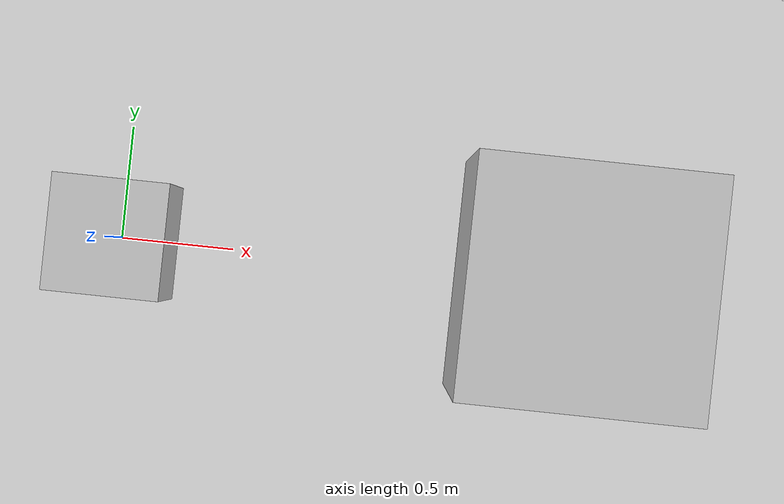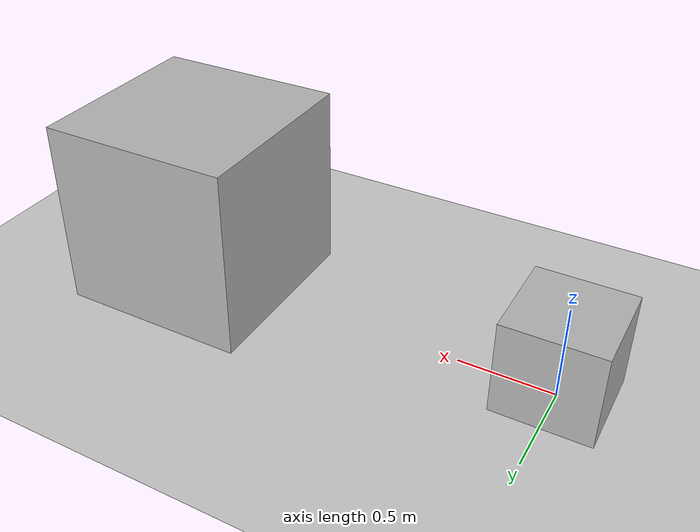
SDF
<?xml version="1.0"?>
<sdf version="1.6">
  <world name="physical_contact_ground_truth">
    <physics name="ode" type="ode">
      <max_step_size>0.001</max_step_size>
      <real_time_update_rate>1000</real_time_update_rate>
    </physics>
    <include>
      <uri>model://ground_plane</uri>
    </include>
    <model name="xgc2_obstacle_test_box">
      <static>true</static>
      <pose>2 0 0.5 0 0 0</pose>
      <link name="body">
        <collision name="collision">
          <geometry>
            <box>
              <size>1 1 1</size>
            </box>
          </geometry>
        </collision>
        <visual name="visual">
          <geometry>
            <box>
              <size>1 1 1</size>
            </box>
          </geometry>
        </visual>
      </link>
    </model>
    <model name="test_robot_1">
      <static>false</static>
      <pose>0 0 0.25 0 0 0</pose>
      <link name="body">
        <inertial>
          <mass>1</mass>
          <inertia>
            <ixx>0.0416666667</ixx>
            <iyy>0.0416666667</iyy>
            <izz>0.0416666667</izz>
          </inertia>
        </inertial>
        <collision name="collision">
          <geometry>
            <box>
              <size>0.5 0.5 0.5</size>
            </box>
          </geometry>
        </collision>
        <visual name="visual">
          <geometry>
            <box>
              <size>0.5 0.5 0.5</size>
            </box>
          </geometry>
        </visual>
      </link>
    </model>
  </world>
</sdf>
